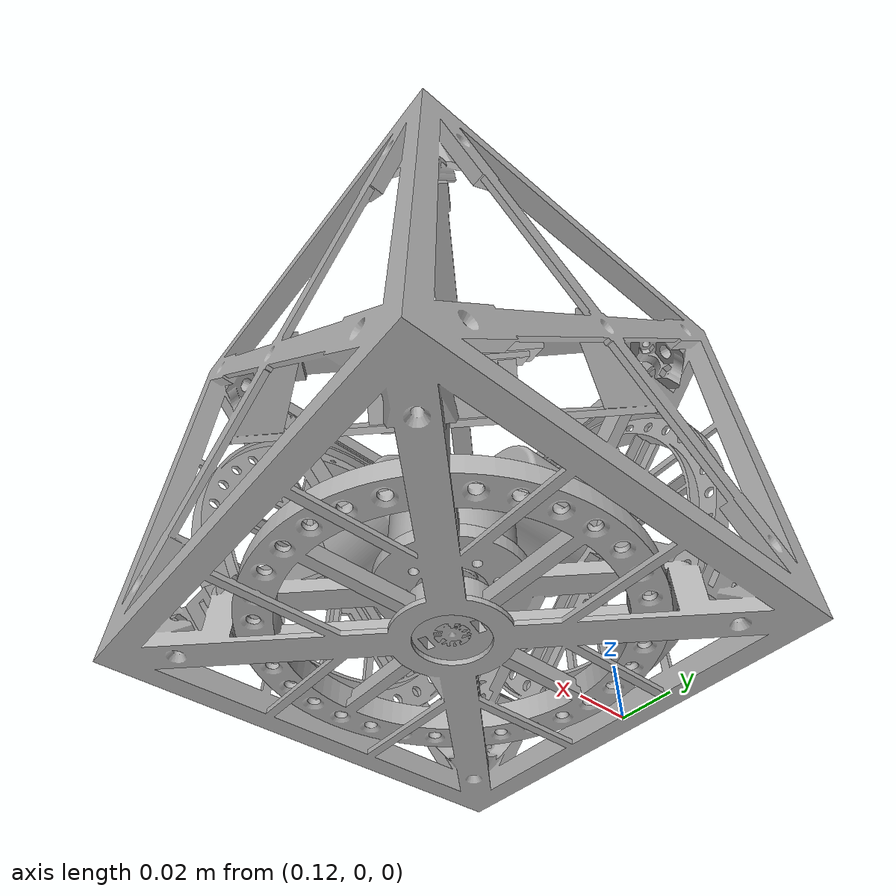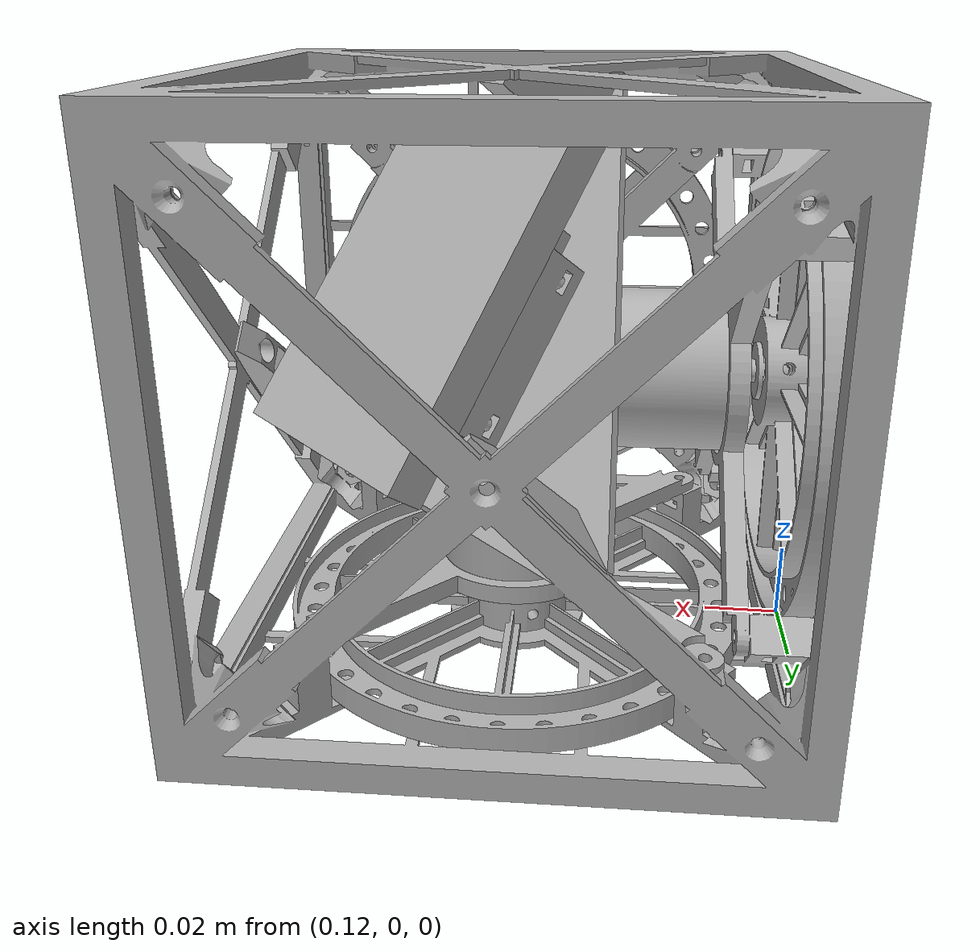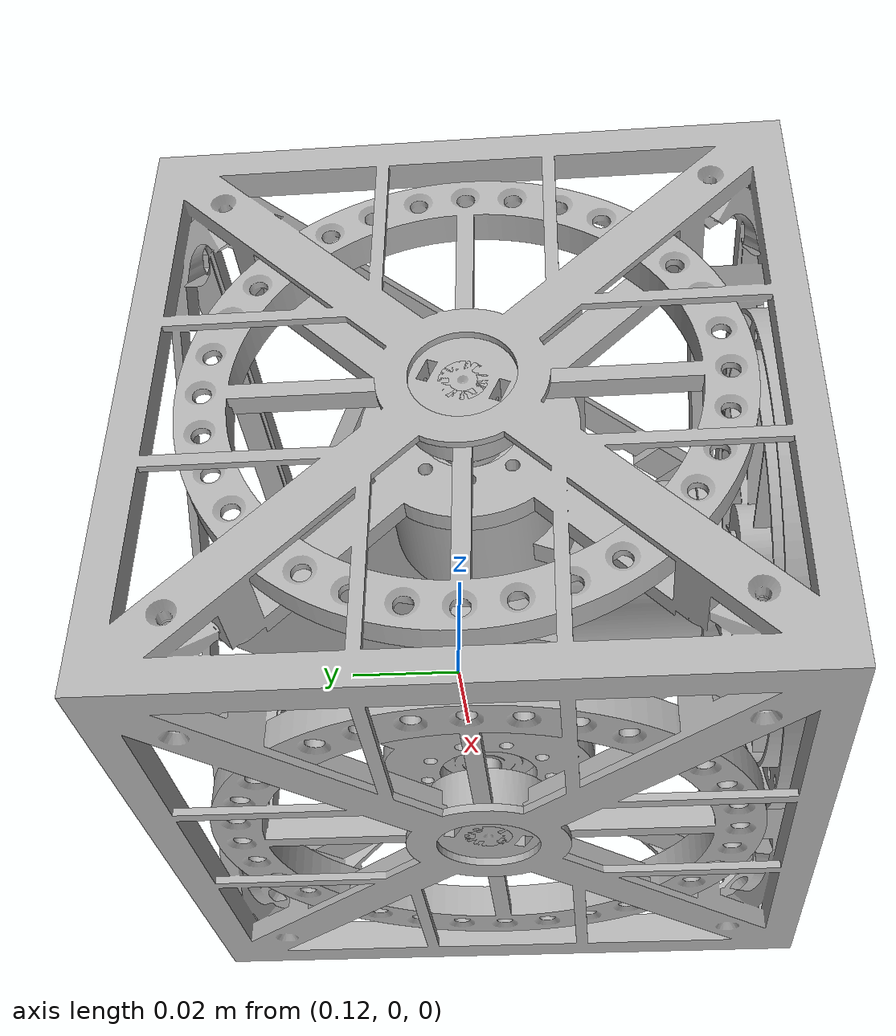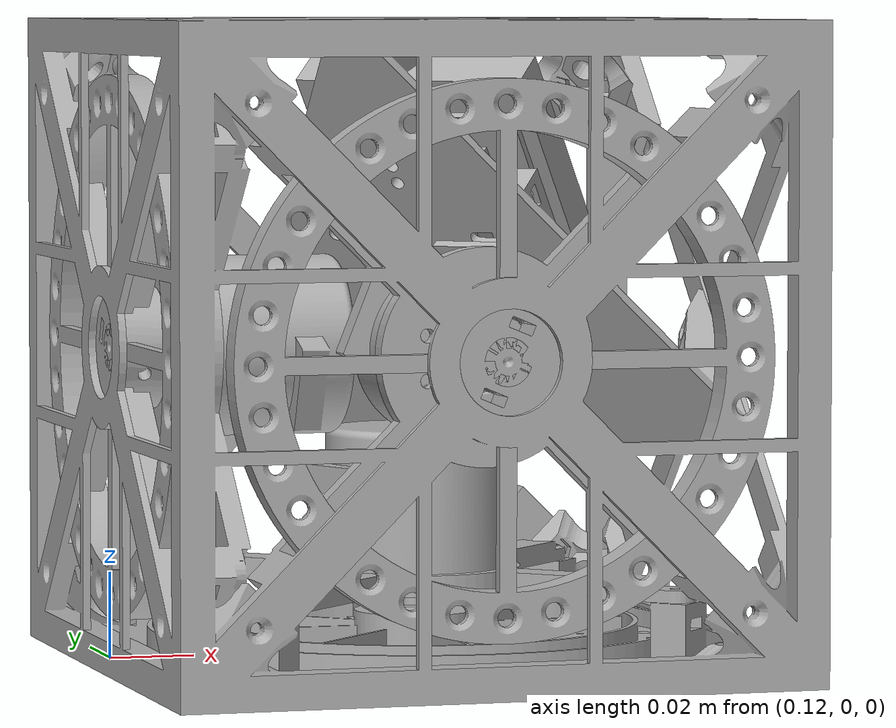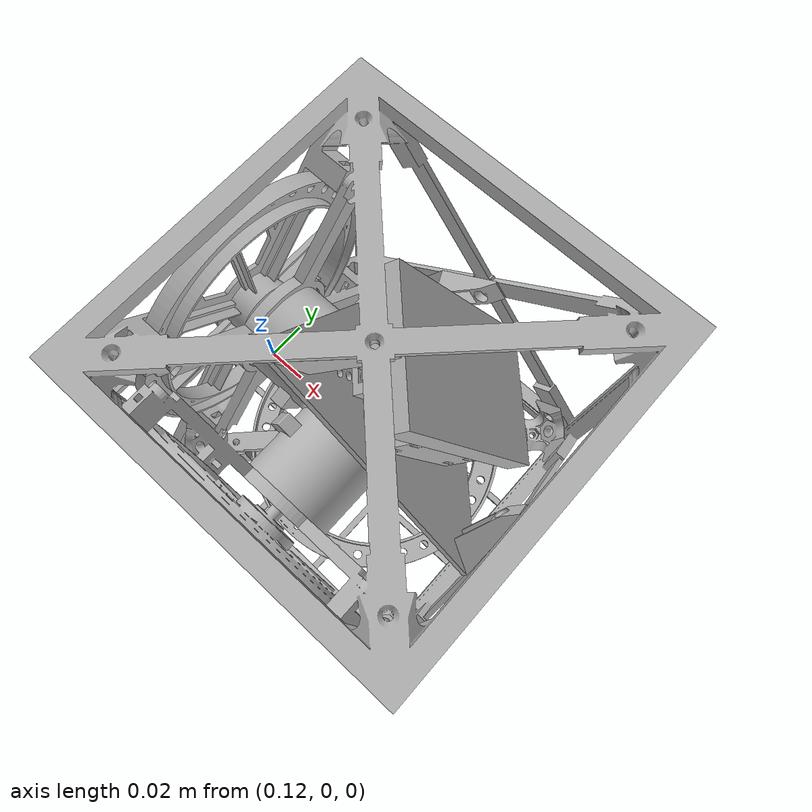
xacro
<?xml version="1.0" ?>
<robot name="The_Cube" xmlns:xacro="http://www.ros.org/wiki/xacro">

<xacro:include filename="$(find The_Cube_description)/urdf/materials.xacro" />
<xacro:include filename="$(find The_Cube_description)/urdf/The_Cube.trans" />
<xacro:include filename="$(find The_Cube_description)/urdf/The_Cube.gazebo" />
<link name="base_link">
  <inertial>
    <origin xyz="0.18905310681396006 -0.004749472984420826 0.06775041785741594" rpy="0 0 0"/>
    <mass value="0.2825071164855692"/>
    <inertia ixx="0.001861" iyy="0.00186" izz="0.00186" ixy="6e-06" iyz="6e-06" ixz="6e-06"/>
  </inertial>
  <visual>
    <origin xyz="0 0 0" rpy="0 0 0"/>
    <geometry>
      <mesh filename="package://The_Cube_description/meshes/base_link.stl" scale="0.001 0.001 0.001"/>
    </geometry>
    <material name="silver"/>
  </visual>
  <collision>
    <origin xyz="0 0 0" rpy="0 0 0"/>
    <geometry>
      <mesh filename="package://The_Cube_description/meshes/base_link.stl" scale="0.001 0.001 0.001"/>
    </geometry>
  </collision>
</link>

<link name="DCmotor_1_1">
  <inertial>
    <origin xyz="0.016235749154079743 -0.00029565182233933803 -0.0001238340027178153" rpy="0 0 0"/>
    <mass value="0.3882772403065904"/>
    <inertia ixx="8.5e-05" iyy="8.7e-05" izz="8.9e-05" ixy="1e-06" iyz="-1e-06" ixz="0.0"/>
  </inertial>
  <visual>
    <origin xyz="-0.139601 -4e-06 -0.072496" rpy="0 0 0"/>
    <geometry>
      <mesh filename="package://The_Cube_description/meshes/DCmotor_1_1.stl" scale="0.001 0.001 0.001"/>
    </geometry>
    <material name="silver"/>
  </visual>
  <collision>
    <origin xyz="-0.139601 -4e-06 -0.072496" rpy="0 0 0"/>
    <geometry>
      <mesh filename="package://The_Cube_description/meshes/DCmotor_1_1.stl" scale="0.001 0.001 0.001"/>
    </geometry>
  </collision>
</link>

<link name="DCmotor_2_1">
  <inertial>
    <origin xyz="-0.00028991814949216876 0.016235960708810074 0.0001247371181640755" rpy="0 0 0"/>
    <mass value="0.3882772403065906"/>
    <inertia ixx="8.7e-05" iyy="8.5e-05" izz="8.9e-05" ixy="1e-06" iyz="-0.0" ixz="1e-06"/>
  </inertial>
  <visual>
    <origin xyz="-0.193804 0.0542 -0.072496" rpy="0 0 0"/>
    <geometry>
      <mesh filename="package://The_Cube_description/meshes/DCmotor_2_1.stl" scale="0.001 0.001 0.001"/>
    </geometry>
    <material name="silver"/>
  </visual>
  <collision>
    <origin xyz="-0.193804 0.0542 -0.072496" rpy="0 0 0"/>
    <geometry>
      <mesh filename="package://The_Cube_description/meshes/DCmotor_2_1.stl" scale="0.001 0.001 0.001"/>
    </geometry>
  </collision>
</link>

<link name="DCmotor_3_1">
  <inertial>
    <origin xyz="-0.00028553038008385934 -0.00012473802118328678 0.016235959805811672" rpy="0 0 0"/>
    <mass value="0.38827724030659055"/>
    <inertia ixx="8.7e-05" iyy="9e-05" izz="8.5e-05" ixy="-1e-06" iyz="0.0" ixz="1e-06"/>
  </inertial>
  <visual>
    <origin xyz="-0.193804 -4e-06 -0.0183" rpy="0 0 0"/>
    <geometry>
      <mesh filename="package://The_Cube_description/meshes/DCmotor_3_1.stl" scale="0.001 0.001 0.001"/>
    </geometry>
    <material name="silver"/>
  </visual>
  <collision>
    <origin xyz="-0.193804 -4e-06 -0.0183" rpy="0 0 0"/>
    <geometry>
      <mesh filename="package://The_Cube_description/meshes/DCmotor_3_1.stl" scale="0.001 0.001 0.001"/>
    </geometry>
  </collision>
</link>

<link name="reaction_wheel_1_1">
  <inertial>
    <origin xyz="0.0031061780427162483 -3.3845253018953483e-07 5.027848573035953e-07" rpy="0 0 0"/>
    <mass value="0.19036250502089258"/>
    <inertia ixx="0.000413" iyy="0.000208" izz="0.000208" ixy="-0.0" iyz="0.0" ixz="-0.0"/>
  </inertial>
  <visual>
    <origin xyz="-0.120001 -4e-06 -0.072496" rpy="0 0 0"/>
    <geometry>
      <mesh filename="package://The_Cube_description/meshes/reaction_wheel_1_1.stl" scale="0.001 0.001 0.001"/>
    </geometry>
    <material name="silver"/>
  </visual>
  <collision>
    <origin xyz="-0.120001 -4e-06 -0.072496" rpy="0 0 0"/>
    <geometry>
      <mesh filename="package://The_Cube_description/meshes/reaction_wheel_1_1.stl" scale="0.001 0.001 0.001"/>
    </geometry>
  </collision>
</link>

<link name="reaction_wheel_3_1">
  <inertial>
    <origin xyz="3.857142678309611e-07 -5.557168391683256e-07 0.003106388694394966" rpy="0 0 0"/>
    <mass value="0.19036250502089255"/>
    <inertia ixx="0.000208" iyy="0.000208" izz="0.000413" ixy="-0.0" iyz="0.0" ixz="-0.0"/>
  </inertial>
  <visual>
    <origin xyz="-0.193804 -4e-06 0.0013" rpy="0 0 0"/>
    <geometry>
      <mesh filename="package://The_Cube_description/meshes/reaction_wheel_3_1.stl" scale="0.001 0.001 0.001"/>
    </geometry>
    <material name="silver"/>
  </visual>
  <collision>
    <origin xyz="-0.193804 -4e-06 0.0013" rpy="0 0 0"/>
    <geometry>
      <mesh filename="package://The_Cube_description/meshes/reaction_wheel_3_1.stl" scale="0.001 0.001 0.001"/>
    </geometry>
  </collision>
</link>

<link name="reaction_wheel_2_1">
  <inertial>
    <origin xyz="3.861645718472584e-07 0.003106389597414161 5.547260085170258e-07" rpy="0 0 0"/>
    <mass value="0.19036250502089228"/>
    <inertia ixx="0.000208" iyy="0.000413" izz="0.000208" ixy="-0.0" iyz="-0.0" ixz="0.0"/>
  </inertial>
  <visual>
    <origin xyz="-0.193804 0.0738 -0.072496" rpy="0 0 0"/>
    <geometry>
      <mesh filename="package://The_Cube_description/meshes/reaction_wheel_2_1.stl" scale="0.001 0.001 0.001"/>
    </geometry>
    <material name="silver"/>
  </visual>
  <collision>
    <origin xyz="-0.193804 0.0738 -0.072496" rpy="0 0 0"/>
    <geometry>
      <mesh filename="package://The_Cube_description/meshes/reaction_wheel_2_1.stl" scale="0.001 0.001 0.001"/>
    </geometry>
  </collision>
</link>

<link name="The_Cube_PCB_1">
  <inertial>
    <origin xyz="0.0028491973514292723 0.002848850839225127 0.0029707845072653727" rpy="0 0 0"/>
    <mass value="0.05175046450228398"/>
    <inertia ixx="3.7e-05" iyy="3.7e-05" izz="2.8e-05" ixy="1e-06" iyz="1.2e-05" ixz="1.2e-05"/>
  </inertial>
  <visual>
    <origin xyz="-0.211828 -0.022271 -0.097407" rpy="0 0 0"/>
    <geometry>
      <mesh filename="package://The_Cube_description/meshes/The_Cube_PCB_1.stl" scale="0.001 0.001 0.001"/>
    </geometry>
    <material name="silver"/>
  </visual>
  <collision>
    <origin xyz="-0.211828 -0.022271 -0.097407" rpy="0 0 0"/>
    <geometry>
      <mesh filename="package://The_Cube_description/meshes/The_Cube_PCB_1.stl" scale="0.001 0.001 0.001"/>
    </geometry>
  </collision>
</link>

<link name="MPU6050_1">
  <inertial>
    <origin xyz="0.0024698756000315902 -0.00812619069231936 0.0036981199398701953" rpy="0 0 0"/>
    <mass value="0.0005888788244722338"/>
    <inertia ixx="0.0" iyy="0.0" izz="0.0" ixy="0.0" iyz="0.0" ixz="0.0"/>
  </inertial>
  <visual>
    <origin xyz="-0.205893 -0.001485 -0.085962" rpy="0 0 0"/>
    <geometry>
      <mesh filename="package://The_Cube_description/meshes/MPU6050_1.stl" scale="0.001 0.001 0.001"/>
    </geometry>
    <material name="silver"/>
  </visual>
  <collision>
    <origin xyz="-0.205893 -0.001485 -0.085962" rpy="0 0 0"/>
    <geometry>
      <mesh filename="package://The_Cube_description/meshes/MPU6050_1.stl" scale="0.001 0.001 0.001"/>
    </geometry>
  </collision>
</link>

<link name="holder_1">
  <inertial>
    <origin xyz="0.012396373549256406 0.01311986574119364 -0.05831014993150063" rpy="0 0 0"/>
    <mass value="0.04356341625735479"/>
    <inertia ixx="5.2e-05" iyy="5.1e-05" izz="5.1e-05" ixy="1.1e-05" iyz="1.1e-05" ixz="1.2e-05"/>
  </inertial>
  <visual>
    <origin xyz="-0.193801 -0.0 -0.1463" rpy="0 0 0"/>
    <geometry>
      <mesh filename="package://The_Cube_description/meshes/holder_1.stl" scale="0.001 0.001 0.001"/>
    </geometry>
    <material name="silver"/>
  </visual>
  <collision>
    <origin xyz="-0.193801 -0.0 -0.1463" rpy="0 0 0"/>
    <geometry>
      <mesh filename="package://The_Cube_description/meshes/holder_1.stl" scale="0.001 0.001 0.001"/>
    </geometry>
  </collision>
</link>

<link name="battery_1">
  <inertial>
    <origin xyz="0.016427177372571544 0.01642641382208172 -0.018280922688341597" rpy="0 0 0"/>
    <mass value="0.07248689999999999"/>
    <inertia ixx="2e-05" iyy="2e-05" izz="1.3e-05" ixy="-1e-06" iyz="6e-06" ixz="6e-06"/>
  </inertial>
  <visual>
    <origin xyz="-0.190512 0.003288 -0.108999" rpy="0 0 0"/>
    <geometry>
      <mesh filename="package://The_Cube_description/meshes/battery_1.stl" scale="0.001 0.001 0.001"/>
    </geometry>
    <material name="silver"/>
  </visual>
  <collision>
    <origin xyz="-0.190512 0.003288 -0.108999" rpy="0 0 0"/>
    <geometry>
      <mesh filename="package://The_Cube_description/meshes/battery_1.stl" scale="0.001 0.001 0.001"/>
    </geometry>
  </collision>
</link>

<joint name="Fix 1" type="fixed">
  <origin xyz="0.139601 4e-06 0.072496" rpy="0 0 0"/>
  <parent link="base_link"/>
  <child link="DCmotor_1_1"/>
</joint>

<joint name="Fix 2" type="fixed">
  <origin xyz="0.193804 -0.0542 0.072496" rpy="0 0 0"/>
  <parent link="base_link"/>
  <child link="DCmotor_2_1"/>
</joint>

<joint name="Fix 3" type="fixed">
  <origin xyz="0.193804 4e-06 0.0183" rpy="0 0 0"/>
  <parent link="base_link"/>
  <child link="DCmotor_3_1"/>
</joint>

<joint name="Joint 1" type="continuous">
  <origin xyz="-0.0196 0.0 0.0" rpy="0 0 0"/>
  <parent link="DCmotor_1_1"/>
  <child link="reaction_wheel_1_1"/>
  <axis xyz="-1.0 0.0 0.0"/>
</joint>

<joint name="Joint 2" type="continuous">
  <origin xyz="0.0 0.0 -0.0196" rpy="0 0 0"/>
  <parent link="DCmotor_3_1"/>
  <child link="reaction_wheel_3_1"/>
  <axis xyz="0.0 0.0 -1.0"/>
</joint>

<joint name="Joint 3" type="continuous">
  <origin xyz="0.0 -0.0196 0.0" rpy="0 0 0"/>
  <parent link="DCmotor_2_1"/>
  <child link="reaction_wheel_2_1"/>
  <axis xyz="0.0 -1.0 -0.0"/>
</joint>

<joint name="Fix 5" type="fixed">
  <origin xyz="0.018027 0.022271 -0.048893" rpy="0 0 0"/>
  <parent link="holder_1"/>
  <child link="The_Cube_PCB_1"/>
</joint>

<joint name="Fix 6" type="fixed">
  <origin xyz="0.012092 0.001485 -0.060338" rpy="0 0 0"/>
  <parent link="holder_1"/>
  <child link="MPU6050_1"/>
</joint>

<joint name="Fix 7" type="fixed">
  <origin xyz="0.193801 0.0 0.1463" rpy="0 0 0"/>
  <parent link="base_link"/>
  <child link="holder_1"/>
</joint>

<joint name="Fix 4" type="fixed">
  <origin xyz="-0.003289 -0.003288 -0.037301" rpy="0 0 0"/>
  <parent link="holder_1"/>
  <child link="battery_1"/>
</joint>

</robot>

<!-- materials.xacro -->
<robot name="The_Cube" xmlns:xacro="http://www.ros.org/wiki/xacro" >

<material name="silver">
  <color rgba="0.700 0.700 0.700 1.000"/>
</material>

</robot>

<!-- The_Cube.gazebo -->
<robot name="The_Cube" xmlns:xacro="http://www.ros.org/wiki/xacro" >

<xacro:property name="body_color" value="Gazebo/Silver" />

<gazebo>
  <plugin name="control" filename="libgazebo_ros_control.so"/>
</gazebo>
<gazebo reference="base_link">
  <material>${body_color}</material>
  <mu1>0.2</mu1>
  <mu2>0.2</mu2>
  <selfCollide>true</selfCollide>
  <gravity>true</gravity>
</gazebo>

<gazebo reference="DCmotor_1_1">
  <material>${body_color}</material>
  <mu1>0.2</mu1>
  <mu2>0.2</mu2>
  <selfCollide>true</selfCollide>
</gazebo>

<gazebo reference="DCmotor_2_1">
  <material>${body_color}</material>
  <mu1>0.2</mu1>
  <mu2>0.2</mu2>
  <selfCollide>true</selfCollide>
</gazebo>

<gazebo reference="DCmotor_3_1">
  <material>${body_color}</material>
  <mu1>0.2</mu1>
  <mu2>0.2</mu2>
  <selfCollide>true</selfCollide>
</gazebo>

<gazebo reference="reaction_wheel_1_1">
  <material>${body_color}</material>
  <mu1>0.2</mu1>
  <mu2>0.2</mu2>
  <selfCollide>true</selfCollide>
</gazebo>

<gazebo reference="reaction_wheel_3_1">
  <material>${body_color}</material>
  <mu1>0.2</mu1>
  <mu2>0.2</mu2>
  <selfCollide>true</selfCollide>
</gazebo>

<gazebo reference="reaction_wheel_2_1">
  <material>${body_color}</material>
  <mu1>0.2</mu1>
  <mu2>0.2</mu2>
  <selfCollide>true</selfCollide>
</gazebo>

<gazebo reference="The_Cube_PCB_1">
  <material>${body_color}</material>
  <mu1>0.2</mu1>
  <mu2>0.2</mu2>
  <selfCollide>true</selfCollide>
</gazebo>

<gazebo reference="MPU6050_1">
  <material>${body_color}</material>
  <mu1>0.2</mu1>
  <mu2>0.2</mu2>
  <selfCollide>true</selfCollide>
</gazebo>

<gazebo reference="holder_1">
  <material>${body_color}</material>
  <mu1>0.2</mu1>
  <mu2>0.2</mu2>
  <selfCollide>true</selfCollide>
</gazebo>

<gazebo reference="battery_1">
  <material>${body_color}</material>
  <mu1>0.2</mu1>
  <mu2>0.2</mu2>
  <selfCollide>true</selfCollide>
</gazebo>

</robot>
